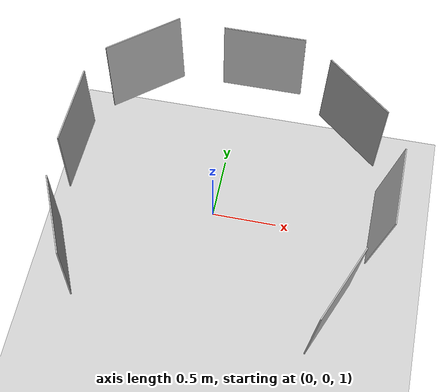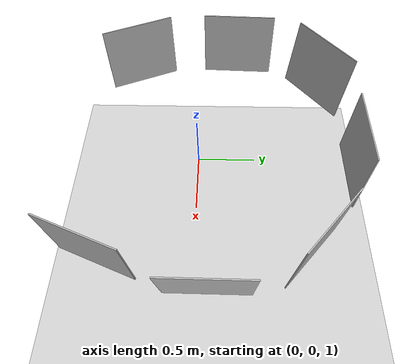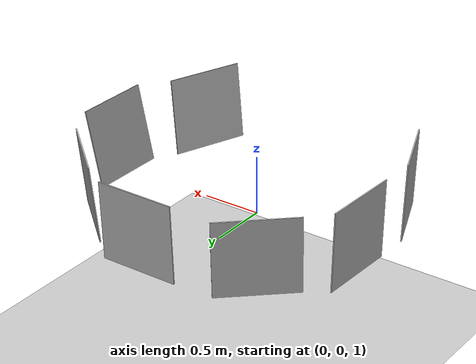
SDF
<sdf version="1.6">
 <world name="default">
  <light name="sun" type="directional">
   <pose>0 0 10 0 -0 0</pose>
   <diffuse>0.8 0.8 0.8 1</diffuse>
   <specular>0.2 0.2 0.2 1</specular>
   <attenuation>
    <range>1000</range>
    <constant>0.9</constant>
    <linear>0.01</linear>
    <quadratic>0.001</quadratic>
   </attenuation>
   <direction>-0.5 0.1 -0.9</direction>
  </light>
  <model name="ground_plane">
   <static>1</static>
   <link name="link">
    <collision name="collision">
     <geometry><plane><normal>0 0 1</normal><size>100 100</size></plane></geometry>
     <surface><friction><ode><mu>100</mu><mu2>50</mu2></ode></friction></surface>
    </collision>
    <visual name="visual">
     <cast_shadows>0</cast_shadows>
     <geometry><plane><normal>0 0 1</normal><size>100 100</size></plane></geometry>
     <material>
      <script><uri>file://media/materials/scripts/gazebo.material</uri><name>Gazebo/Grey</name></script>
     </material>
    </visual>
   </link>
  </model>
  <gravity>0 0 -9.8</gravity>
  <magnetic_field>6e-06 2.3e-05 -4.2e-05</magnetic_field>
  <atmosphere type="adiabatic"/>
  <physics name="default_physics" default="0" type="ode">
   <max_step_size>0.001</max_step_size>
   <real_time_factor>1</real_time_factor>
   <real_time_update_rate>1000</real_time_update_rate>
  </physics>
  <scene><ambient>0.4 0.4 0.4 1</ambient><background>0.7 0.7 0.7 1</background><shadows>1</shadows></scene>
  <spherical_coordinates>
   <surface_model>EARTH_WGS84</surface_model>
   <latitude_deg>0</latitude_deg>
   <longitude_deg>0</longitude_deg>
   <elevation>0</elevation>
   <heading_deg>0</heading_deg>
  </spherical_coordinates>
  <model name="Apriltag0">
   <link name="main">
    <pose>0.2925 0.2925 -0.005 0 -0 1.5708</pose>
    <visual name="main_Visual">
     <geometry><box><size>0.6638 0.6638 0.01</size></box></geometry>
     <material>
      <script>
       <uri>model://Apriltag0/materials/scripts</uri>
       <uri>model://Apriltag0/materials/textures</uri>
       <name>Apriltag0</name>
      </script>
     </material>
    </visual>
    <collision name="surface"><geometry><box><size>0.6638 0.6638 0.01</size></box></geometry></collision>
   </link>
   <static>1</static>
   <pose>-0.928012 -0.854828 1.03102 1.53666 -0.007373 1.96668</pose>
  </model>
  <model name="Apriltag1">
   <link name="main">
    <pose>0.2925 0.2925 -0.005 0 -0 1.5708</pose>
    <visual name="main_Visual">
     <geometry><box><size>0.6638 0.6638 0.01</size></box></geometry>
     <material>
      <script>
       <uri>model://Apriltag1/materials/scripts</uri>
       <uri>model://Apriltag1/materials/textures</uri>
       <name>Apriltag1</name>
      </script>
     </material>
    </visual>
    <collision name="surface"><geometry><box><size>0.6638 0.6638 0.01</size></box></geometry></collision>
   </link>
   <static>1</static>
   <pose>-1.17205 0.067171 1.05414 1.54573 0 1.53478</pose>
  </model>
  <model name="Apriltag2">
   <link name="main">
    <pose>0.2925 0.2925 -0.005 0 -0 1.5708</pose>
    <visual name="main_Visual">
     <geometry><box><size>0.6638 0.6638 0.01</size></box></geometry>
     <material>
      <script>
       <uri>model://Apriltag2/materials/scripts</uri>
       <uri>model://Apriltag2/materials/textures</uri>
       <name>Apriltag2</name>
      </script>
     </material>
    </visual>
    <collision name="surface"><geometry><box><size>0.6638 0.6638 0.01</size></box></geometry></collision>
   </link>
   <static>1</static>
   <pose>-0.986999 0.882277 1.09486 1.46583 0.0238 0.705009</pose>
  </model>
  <model name="Apriltag3">
   <link name="main">
    <pose>0.2925 0.2925 -0.005 0 -0 1.5708</pose>
    <visual name="main_Visual">
     <geometry><box><size>0.6638 0.6638 0.01</size></box></geometry>
     <material>
      <script>
       <uri>model://Apriltag3/materials/scripts</uri>
       <uri>model://Apriltag3/materials/textures</uri>
       <name>Apriltag3</name>
      </script>
     </material>
    </visual>
    <collision name="surface"><geometry><box><size>0.6638 0.6638 0.01</size></box></geometry></collision>
   </link>
   <static>1</static>
   <pose>-0.131759 1.29023 1.07556 1.52381 -0 6e-06</pose>
  </model>
  <model name="Apriltag4">
   <link name="main">
    <pose>0.2925 0.2925 -0.005 0 -0 1.5708</pose>
    <visual name="main_Visual">
     <geometry><box><size>0.6638 0.6638 0.01</size></box></geometry>
     <material>
      <script>
       <uri>model://Apriltag4/materials/scripts</uri>
       <uri>model://Apriltag4/materials/textures</uri>
       <name>Apriltag4</name>
      </script>
     </material>
    </visual>
    <collision name="surface"><geometry><box><size>0.6638 0.6638 0.01</size></box></geometry></collision>
   </link>
   <static>1</static>
   <pose>0.713625 1.09186 1.06319 1.47183 -0.023047 -0.718581</pose>
  </model>
  <model name="Apriltag5">
   <link name="main">
    <pose>0.2925 0.2925 -0.005 0 -0 1.5708</pose>
    <visual name="main_Visual">
     <geometry><box><size>0.6638 0.6638 0.01</size></box></geometry>
     <material>
      <script>
       <uri>model://Apriltag5/materials/scripts</uri>
       <uri>model://Apriltag5/materials/textures</uri>
       <name>Apriltag5</name>
      </script>
     </material>
    </visual>
    <collision name="surface"><geometry><box><size>0.6638 0.6638 0.01</size></box></geometry></collision>
   </link>
   <static>1</static>
   <pose>1.24022 0.403366 1.07695 1.34687 -0 -1.57995</pose>
  </model>
  <model name="Apriltag6">
   <link name="main">
    <pose>0.2925 0.2925 -0.005 0 -0 1.5708</pose>
    <visual name="main_Visual">
     <geometry><box><size>0.6638 0.6638 0.01</size></box></geometry>
     <material>
      <script>
       <uri>model://Apriltag6/materials/scripts</uri>
       <uri>model://Apriltag6/materials/textures</uri>
       <name>Apriltag6</name>
      </script>
     </material>
    </visual>
    <collision name="surface"><geometry><box><size>0.6638 0.6638 0.01</size></box></geometry></collision>
   </link>
   <static>1</static>
   <pose>1.11606 -0.462161 1.06145 1.45633 -0.010323 -1.94663</pose>
  </model>
 </world>
</sdf>
